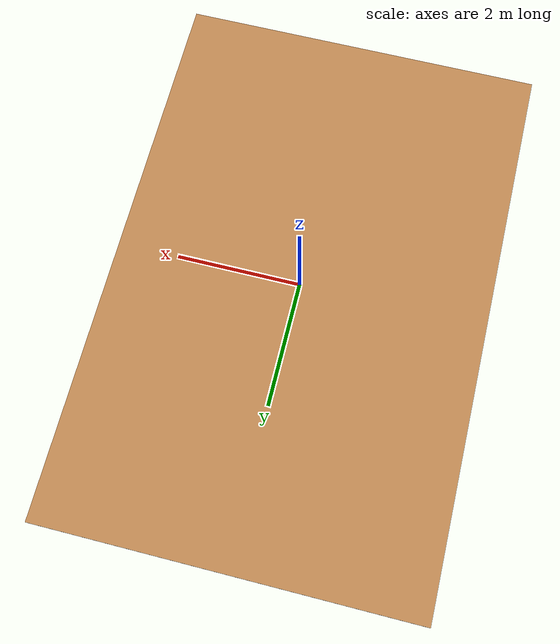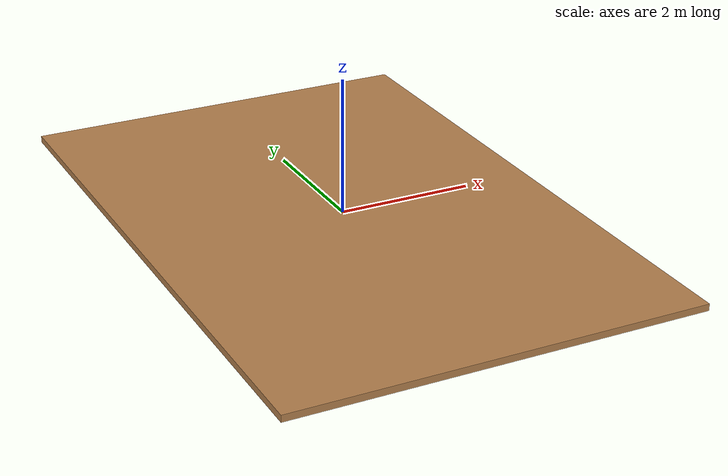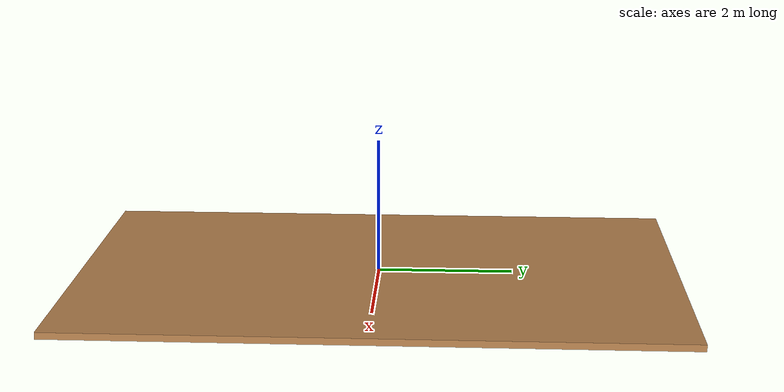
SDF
<?xml version='1.0'?>
<sdf version='1.4'>
  <model name='floor'>
    <link name='Floor'>
      <pose>0 0 -0.049 0 0 0</pose>
      <visual name='Floor'>
        <pose>0 0 0 0 0 0</pose>
        <geometry>
          <box>
            <size>6 9 0.1</size>
          </box>
        </geometry>
        <material>
          <script>
            <uri>file://media/materials/scripts/gazebo.material</uri>
            <name>Gazebo/WoodFloor</name>
          </script>
        </material>
      </visual>
      <velocity_decay>
        <linear>0</linear>
        <angular>0</angular>
      </velocity_decay>
    </link>
    <static>1</static>
  </model>
</sdf>
